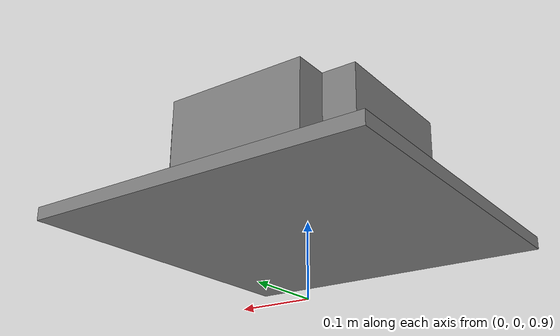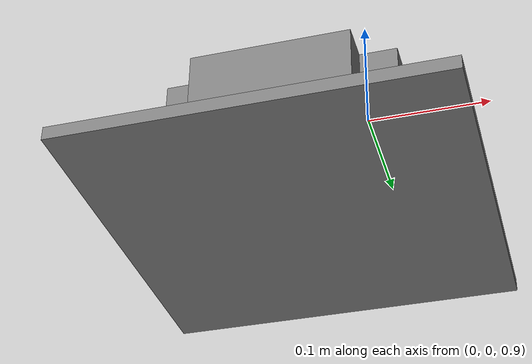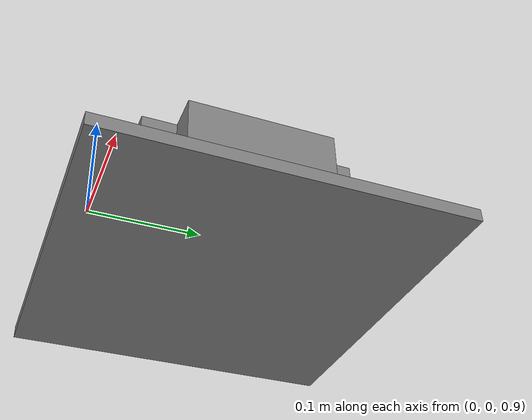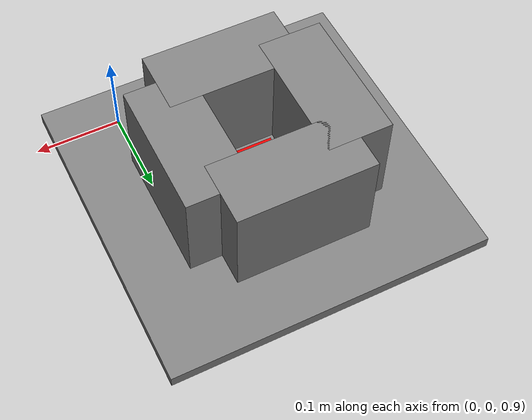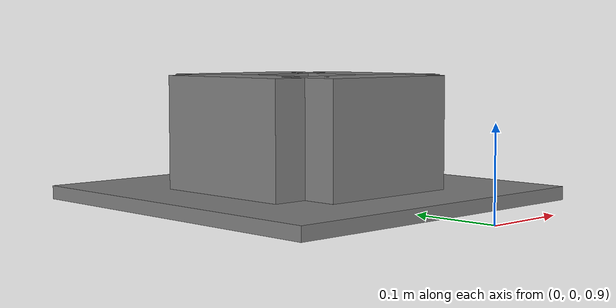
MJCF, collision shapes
<mujoco model="industreal_tray_insert_rectangular_peg_16mm">
  <!-- formal asset; XY scaled from official 8mm; Z layout preserved (site above base) -->
  <asset>
    <mesh name="industreal_tray_insert_rectangular_peg_16mm_mesh"
          file="./industreal/mesh/industreal_pegs/industreal_tray_insert_rectangular_peg_16mm.obj"
          scale="4.5 4.5 4.5" />
    <material name="industreal_tray_insert_rectangular_peg_16mm_mat"
              rgba="0.22 0.28 0.34 1"
              specular="0.85"
              shininess="0.75" />
  </asset>

  <worldbody>
    <body name="industreal_tray_insert_rectangular_peg_16mm" pos="-0.1 0.16 0.92">
      <freejoint name="industreal_tray_insert_rectangular_peg_16mm_joint" />

      <geom name="industreal_tray_insert_rectangular_peg_16mm_visual"
            type="mesh"
            mesh="industreal_tray_insert_rectangular_peg_16mm_mesh"
            material="industreal_tray_insert_rectangular_peg_16mm_mat"
            contype="0"
            conaffinity="0"
            density="0"
            group="1" />

      <geom name="industreal_tray_insert_rectangular_peg_16mm_base"
            type="box"
            pos="0 0 0.00675"
            size="0.182455 0.182455 0.00675"
            friction="0.8 0.02 0.002"
            solref="0.0015 1.0"
            solimp="0.995 0.999 0.0001"
            density="100"
            mass="0.01"
            group="3" />

      <geom name="industreal_tray_insert_rectangular_peg_16mm_wall_pos_y"
            type="box"
            pos="0 0.077543 0.06975"
            size="0.077543 0.036491 0.05625"
            friction="0.8 0.02 0.002"
            solref="0.0015 1.0"
            solimp="0.995 0.999 0.0001"
            density="100"
            mass="0.01"
            group="3" />
      <geom name="industreal_tray_insert_rectangular_peg_16mm_wall_neg_y"
            type="box"
            pos="0 -0.077543 0.06975"
            size="0.077543 0.036491 0.05625"
            friction="0.8 0.02 0.002"
            solref="0.0015 1.0"
            solimp="0.995 0.999 0.0001"
            density="100"
            mass="0.01"
            group="3" />
      <geom name="industreal_tray_insert_rectangular_peg_16mm_wall_pos_x"
            type="box"
            pos="0.077543 0 0.06975"
            size="0.036491 0.077543 0.05625"
            friction="0.8 0.02 0.002"
            solref="0.0015 1.0"
            solimp="0.995 0.999 0.0001"
            density="100"
            mass="0.01"
            group="3" />
      <geom name="industreal_tray_insert_rectangular_peg_16mm_wall_neg_x"
            type="box"
            pos="-0.077543 0 0.06975"
            size="0.036491 0.077543 0.05625"
            friction="0.8 0.02 0.002"
            solref="0.0015 1.0"
            solimp="0.995 0.999 0.0001"
            density="100"
            mass="0.01"
            group="3" />

      <geom name="industreal_tray_insert_rectangular_peg_16mm_bottom_contact"
            type="box"
            pos="0 0 0.0145"
            size="0.036491 0.036491 0.001"
            friction="0.8 0.02 0.002"
            solref="0.0015 1.0"
            solimp="0.995 0.999 0.0001"
            density="100"
            mass="0.01"
            rgba="1 0 0 1"
            group="3" />

      <site name="industreal_tray_insert_rectangular_peg_16mm_socket_site"
            pos="0 0 0.027"
            size="0.006 0.006 0.006"
            rgba="0 0 1 0" />
    </body>
  </worldbody>
</mujoco>
